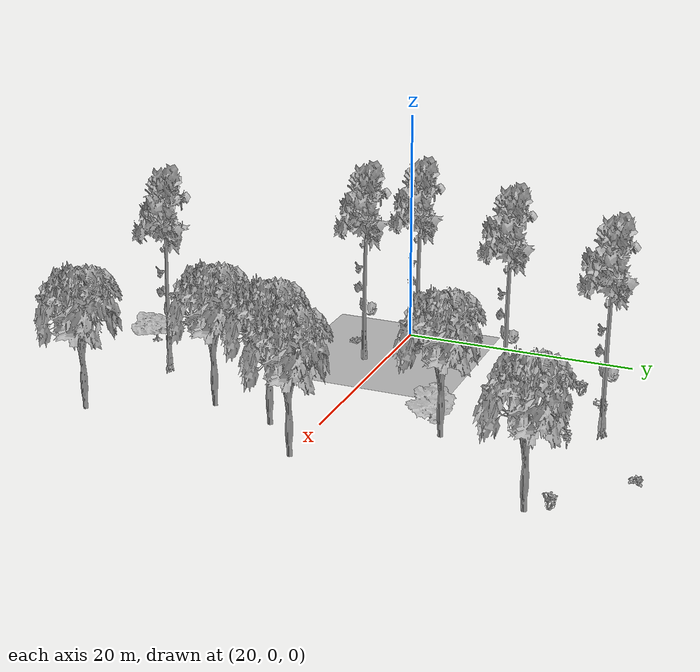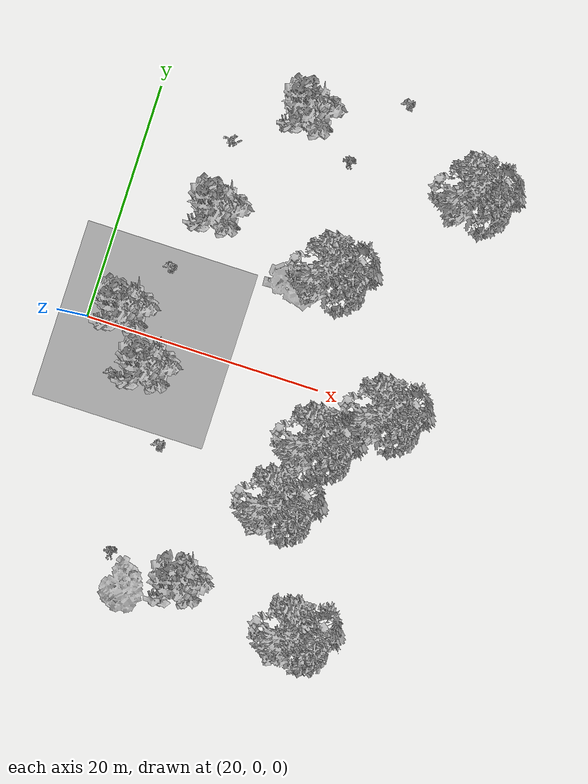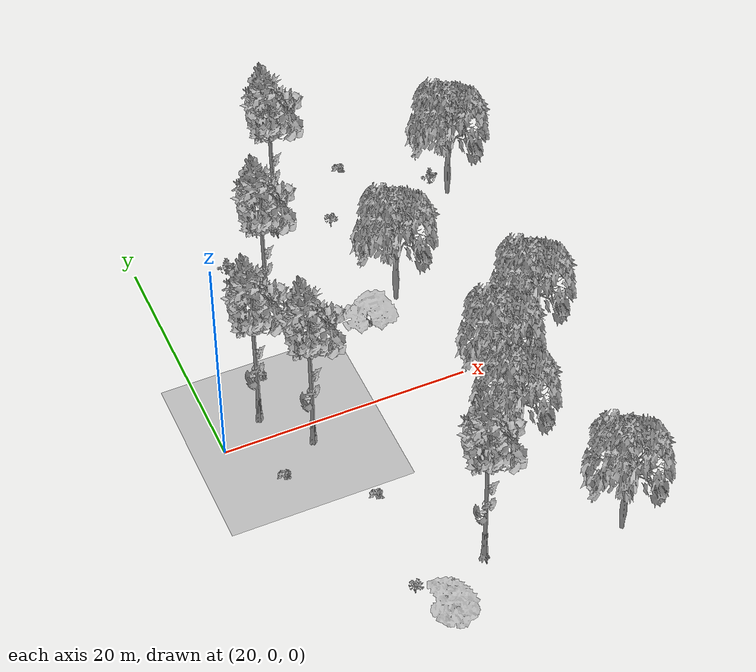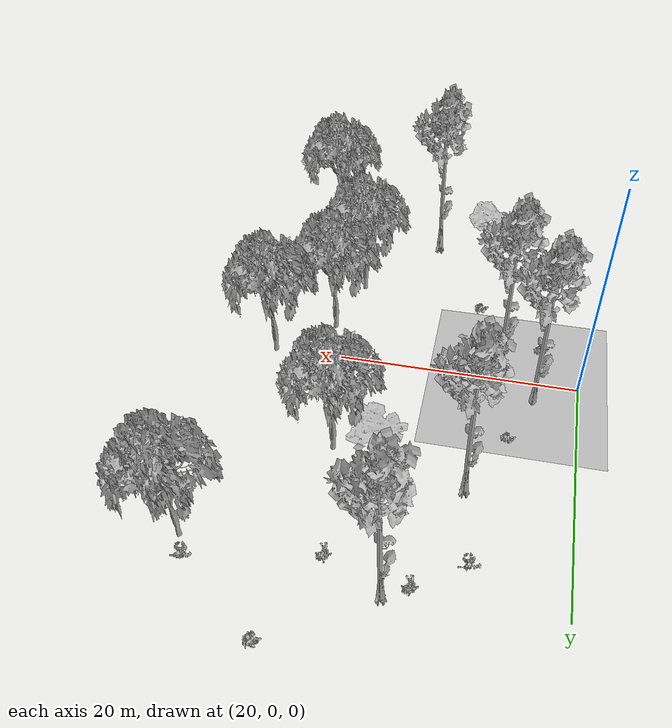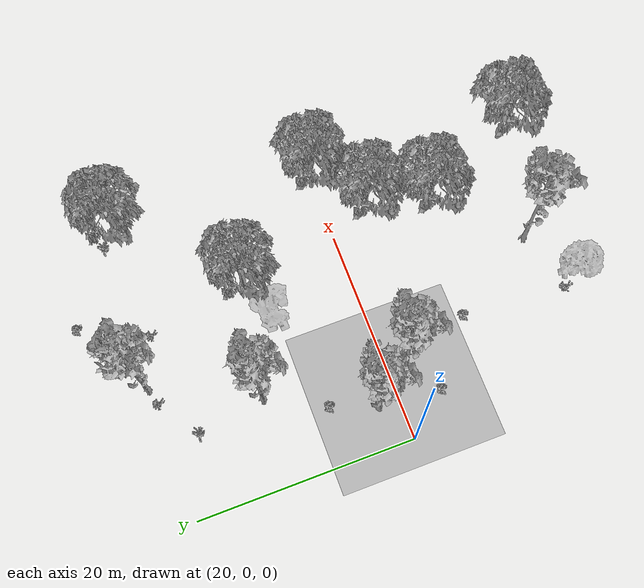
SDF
<sdf version="1.7">
 <world name="default">
  <model name="ground_plane">
   <static>1</static>
   <link name="link">
    <collision name="collision">
     <pose>25.0 0 0 0 -0 0</pose>
     <geometry><plane><normal>0 0 1</normal><size>50 50</size></plane></geometry>
     <surface><contact><ode><min_depth>0.01</min_depth><max_vel>0</max_vel></ode></contact></surface>
    </collision>
    <visual name="grass">
     <pose>25.0 0 0 0 -0 0</pose>
     <cast_shadows>0</cast_shadows>
     <geometry>
      <mesh>
       <scale>0.2731578947368421 0.2802702702702703 0.1</scale>
       <uri>file://grass_plane/meshes/grass_plane.dae</uri>
      </mesh>
     </geometry>
    </visual>
   </link>
  </model>
  <model name="Tree 1">
   <static>1</static>
   <pose>38.296404513346125 9.344037258016414 0 1.57079 -0 0</pose>
   <link name="link">
    <collision name="collision">
     <geometry><mesh><scale>3.5 5 3.5</scale><uri>model://tree_2/meshes/tree_2.obj</uri></mesh></geometry>
    </collision>
    <visual name="visual">
     <geometry><mesh><scale>3.5 5 3.5</scale><uri>model://tree_2/meshes/tree_2.obj</uri></mesh></geometry>
    </visual>
   </link>
  </model>
  <model name="Tree 3">
   <static>1</static>
   <pose>26.546404513346122 -1.7670738530947112 0 1.57079 -0 0</pose>
   <link name="link">
    <collision name="collision">
     <geometry><mesh><scale>3.5 5 3.5</scale><uri>model://tree_9/meshes/tree_9.obj</uri></mesh></geometry>
    </collision>
    <visual name="visual">
     <geometry><mesh><scale>3.5 5 3.5</scale><uri>model://tree_9/meshes/tree_9.obj</uri></mesh></geometry>
    </visual>
   </link>
  </model>
  <model name="Tree 5">
   <static>1</static>
   <pose>44.171404513346125 -18.433740519761372 0 1.57079 -0 0</pose>
   <link name="link">
    <collision name="collision">
     <geometry><mesh><scale>3.5 5 3.5</scale><uri>model://tree_2/meshes/tree_2.obj</uri></mesh></geometry>
    </collision>
    <visual name="visual">
     <geometry><mesh><scale>3.5 5 3.5</scale><uri>model://tree_2/meshes/tree_2.obj</uri></mesh></geometry>
    </visual>
   </link>
  </model>
  <model name="Tree 7">
   <static>1</static>
   <pose>32.42140451334612 20.455148369127528 0 1.57079 -0 0</pose>
   <link name="link">
    <collision name="collision">
     <geometry><mesh><scale>3.5 5 3.5</scale><uri>model://tree_9/meshes/tree_9.obj</uri></mesh></geometry>
    </collision>
    <visual name="visual">
     <geometry><mesh><scale>3.5 5 3.5</scale><uri>model://tree_9/meshes/tree_9.obj</uri></mesh></geometry>
    </visual>
   </link>
  </model>
  <model name="Tree 9">
   <static>1</static>
   <pose>41.233904513346125 -3.6189257049465624 0 1.57079 -0 0</pose>
   <link name="link">
    <collision name="collision">
     <geometry><mesh><scale>3.5 5 3.5</scale><uri>model://tree_2/meshes/tree_2.obj</uri></mesh></geometry>
    </collision>
    <visual name="visual">
     <geometry><mesh><scale>3.5 5 3.5</scale><uri>model://tree_2/meshes/tree_2.obj</uri></mesh></geometry>
    </visual>
   </link>
  </model>
  <model name="Tree 11">
   <static>1</static>
   <pose>29.483904513346122 -20.28559237161322 0 1.57079 -0 0</pose>
   <link name="link">
    <collision name="collision">
     <geometry><mesh><scale>4 2.5 4</scale><uri>model://tree_1/meshes/tree_1.obj</uri></mesh></geometry>
    </collision>
    <visual name="visual">
     <geometry><mesh><scale>4 2.5 4</scale><uri>model://tree_1/meshes/tree_1.obj</uri></mesh></geometry>
    </visual>
   </link>
  </model>
  <model name="Tree 12">
   <static>1</static>
   <pose>23.608904513346122 1.9366298506090054 0 1.57079 -0 0</pose>
   <link name="link">
    <collision name="collision">
     <geometry><mesh><scale>3.5 5 3.5</scale><uri>model://tree_9/meshes/tree_9.obj</uri></mesh></geometry>
    </collision>
    <visual name="visual">
     <geometry><mesh><scale>3.5 5 3.5</scale><uri>model://tree_9/meshes/tree_9.obj</uri></mesh></geometry>
    </visual>
   </link>
  </model>
  <model name="Tree 13">
   <static>1</static>
   <pose>47.108904513346125 18.603296517275666 0 1.57079 -0 0</pose>
   <link name="link">
    <collision name="collision">
     <geometry><mesh><scale>3.5 5 3.5</scale><uri>model://tree_2/meshes/tree_2.obj</uri></mesh></geometry>
    </collision>
    <visual name="visual">
     <geometry><mesh><scale>3.5 5 3.5</scale><uri>model://tree_2/meshes/tree_2.obj</uri></mesh></geometry>
    </visual>
   </link>
  </model>
  <model name="Tree 15">
   <static>1</static>
   <pose>35.358904513346125 7.492185406164566 0 1.57079 -0 0</pose>
   <link name="link">
    <collision name="collision">
     <geometry><mesh><scale>3 2 3</scale><uri>model://tree_3/meshes/tree_3.obj</uri></mesh></geometry>
    </collision>
    <visual name="visual">
     <geometry><mesh><scale>3 2 3</scale><uri>model://tree_3/meshes/tree_3.obj</uri></mesh></geometry>
    </visual>
   </link>
  </model>
  <model name="Tree 17">
   <static>1</static>
   <pose>39.765154513346125 -9.174481260502118 0 1.57079 -0 0</pose>
   <link name="link">
    <collision name="collision">
     <geometry><mesh><scale>3.5 5 3.5</scale><uri>model://tree_2/meshes/tree_2.obj</uri></mesh></geometry>
    </collision>
    <visual name="visual">
     <geometry><mesh><scale>3.5 5 3.5</scale><uri>model://tree_2/meshes/tree_2.obj</uri></mesh></geometry>
    </visual>
   </link>
  </model>
  <model name="Tree 19">
   <static>1</static>
   <pose>28.015154513346122 11.195889109868276 0 1.57079 -0 0</pose>
   <link name="link">
    <collision name="collision">
     <geometry><mesh><scale>3.5 5 3.5</scale><uri>model://tree_9/meshes/tree_9.obj</uri></mesh></geometry>
    </collision>
    <visual name="visual">
     <geometry><mesh><scale>3.5 5 3.5</scale><uri>model://tree_9/meshes/tree_9.obj</uri></mesh></geometry>
    </visual>
   </link>
  </model>
  <model name="Tree 21">
   <static>1</static>
   <pose>45.640154513346125 0.08477799875715775 0 1.57079 -0 0</pose>
   <link name="link">
    <collision name="collision">
     <geometry><mesh><scale>3.5 5 3.5</scale><uri>model://tree_2/meshes/tree_2.obj</uri></mesh></geometry>
    </collision>
    <visual name="visual">
     <geometry><mesh><scale>3.5 5 3.5</scale><uri>model://tree_2/meshes/tree_2.obj</uri></mesh></geometry>
    </visual>
   </link>
  </model>
  <model name="Tree 23">
   <static>1</static>
   <pose>33.89015451334612 -16.581888667909517 0 1.57079 -0 0</pose>
   <link name="link">
    <collision name="collision">
     <geometry><mesh><scale>3.5 5 3.5</scale><uri>model://tree_9/meshes/tree_9.obj</uri></mesh></geometry>
    </collision>
    <visual name="visual">
     <geometry><mesh><scale>3.5 5 3.5</scale><uri>model://tree_9/meshes/tree_9.obj</uri></mesh></geometry>
    </visual>
   </link>
  </model>
  <model name="Bush 0">
   <static>1</static>
   <pose>39.90720929934733 24.816808916662737 0 1.57079 -0 0</pose>
   <link name="link">
    <collision name="collision">
     <geometry><mesh><scale>2 2 2</scale><uri>model://bush_2/meshes/bush_2.obj</uri></mesh></geometry>
     <surface><contact><collide_without_contact>false</collide_without_contact></contact></surface>
    </collision>
    <visual name="visual">
     <geometry><mesh><scale>2 2 2</scale><uri>model://bush_2/meshes/bush_2.obj</uri></mesh></geometry>
    </visual>
   </link>
  </model>
  <model name="Bush 1">
   <static>1</static>
   <pose>27.884170264834054 -17.671185448642717 0 1.57079 -0 0</pose>
   <link name="link">
    <collision name="collision">
     <geometry><mesh><scale>2 2 2</scale><uri>model://bush_5/meshes/bush_5.obj</uri></mesh></geometry>
     <surface><contact><collide_without_contact>false</collide_without_contact></contact></surface>
    </collision>
    <visual name="visual">
     <geometry><mesh><scale>2 2 2</scale><uri>model://bush_5/meshes/bush_5.obj</uri></mesh></geometry>
    </visual>
   </link>
  </model>
  <model name="Bush 2">
   <static>1</static>
   <pose>23.287298568705754 -3.9010777629171436 0 1.57079 -0 0</pose>
   <link name="link">
    <collision name="collision">
     <geometry><mesh><scale>2 2 2</scale><uri>model://bush_2/meshes/bush_2.obj</uri></mesh></geometry>
     <surface><contact><collide_without_contact>false</collide_without_contact></contact></surface>
    </collision>
    <visual name="visual">
     <geometry><mesh><scale>2 2 2</scale><uri>model://bush_2/meshes/bush_2.obj</uri></mesh></geometry>
    </visual>
   </link>
  </model>
  <model name="Bush 3">
   <static>1</static>
   <pose>30.616945413699288 20.06226353986859 0 1.57079 -0 0</pose>
   <link name="link">
    <collision name="collision">
     <geometry><mesh><scale>2 2 2</scale><uri>model://bush_5/meshes/bush_5.obj</uri></mesh></geometry>
     <surface><contact><collide_without_contact>false</collide_without_contact></contact></surface>
    </collision>
    <visual name="visual">
     <geometry><mesh><scale>2 2 2</scale><uri>model://bush_5/meshes/bush_5.obj</uri></mesh></geometry>
    </visual>
   </link>
  </model>
  <model name="Bush 4">
   <static>1</static>
   <pose>25.28494208266488 5.95673415131726 0 1.57079 -0 0</pose>
   <link name="link">
    <collision name="collision">
     <geometry><mesh><scale>2 2 2</scale><uri>model://bush_2/meshes/bush_2.obj</uri></mesh></geometry>
     <surface><contact><collide_without_contact>false</collide_without_contact></contact></surface>
    </collision>
    <visual name="visual">
     <geometry><mesh><scale>2 2 2</scale><uri>model://bush_2/meshes/bush_2.obj</uri></mesh></geometry>
    </visual>
   </link>
  </model>
  <model name="Bush 10">
   <static>1</static>
   <pose>26.952030698219016 17.329412893680022 0 1.57079 -0 0</pose>
   <link name="link">
    <collision name="collision">
     <geometry><mesh><scale>2 2 2</scale><uri>model://bush_4/meshes/bush_4.obj</uri></mesh></geometry>
     <surface><contact><collide_without_contact>false</collide_without_contact></contact></surface>
    </collision>
    <visual name="visual">
     <geometry><mesh><scale>2 2 2</scale><uri>model://bush_4/meshes/bush_4.obj</uri></mesh></geometry>
    </visual>
   </link>
  </model>
  <model name="Bush 11">
   <static>1</static>
   <pose>46.322575584755356 20.183299826361278 0 1.57079 -0 0</pose>
   <link name="link">
    <collision name="collision">
     <geometry><mesh><scale>2 2 2</scale><uri>model://bush_4/meshes/bush_4.obj</uri></mesh></geometry>
     <surface><contact><collide_without_contact>false</collide_without_contact></contact></surface>
    </collision>
    <visual name="visual">
     <geometry><mesh><scale>2 2 2</scale><uri>model://bush_4/meshes/bush_4.obj</uri></mesh></geometry>
    </visual>
   </link>
  </model>
  <model name="Bush 12">
   <static>1</static>
   <pose>28.878545440955506 -8.35741238034786 0 1.57079 -0 0</pose>
   <link name="link">
    <collision name="collision">
     <geometry><mesh><scale>2 2 2</scale><uri>model://bush_2/meshes/bush_2.obj</uri></mesh></geometry>
     <surface><contact><collide_without_contact>false</collide_without_contact></contact></surface>
    </collision>
    <visual name="visual">
     <geometry><mesh><scale>2 2 2</scale><uri>model://bush_2/meshes/bush_2.obj</uri></mesh></geometry>
    </visual>
   </link>
  </model>
  <model name="Bush 17">
   <static>1</static>
   <pose>36.73248751832546 18.829327243135204 0 1.57079 -0 0</pose>
   <link name="link">
    <collision name="collision">
     <geometry><mesh><scale>2 2 2</scale><uri>model://bush_5/meshes/bush_5.obj</uri></mesh></geometry>
     <surface><contact><collide_without_contact>false</collide_without_contact></contact></surface>
    </collision>
    <visual name="visual">
     <geometry><mesh><scale>2 2 2</scale><uri>model://bush_5/meshes/bush_5.obj</uri></mesh></geometry>
    </visual>
   </link>
  </model>
 </world>
</sdf>
